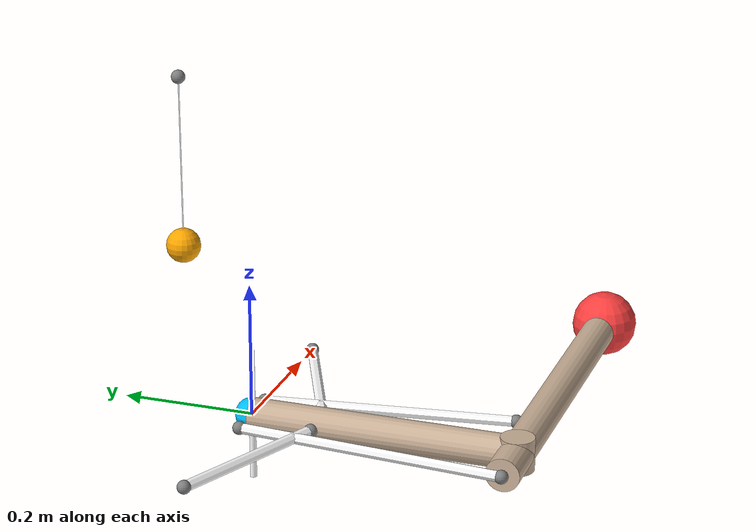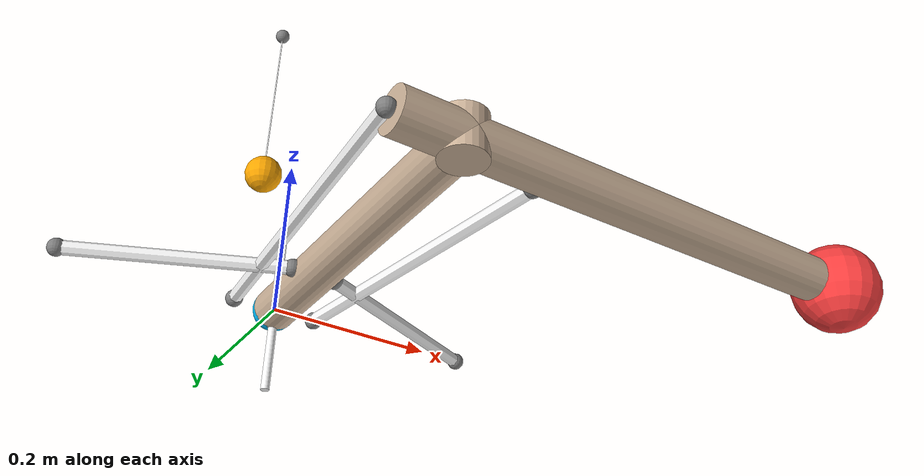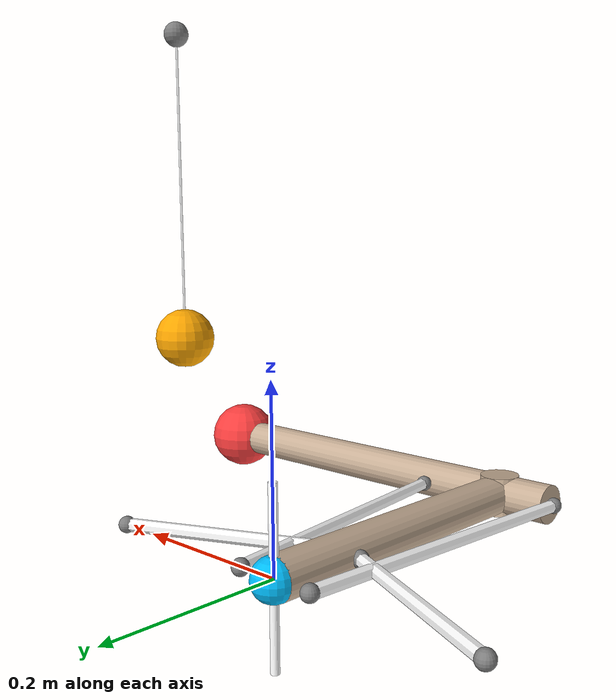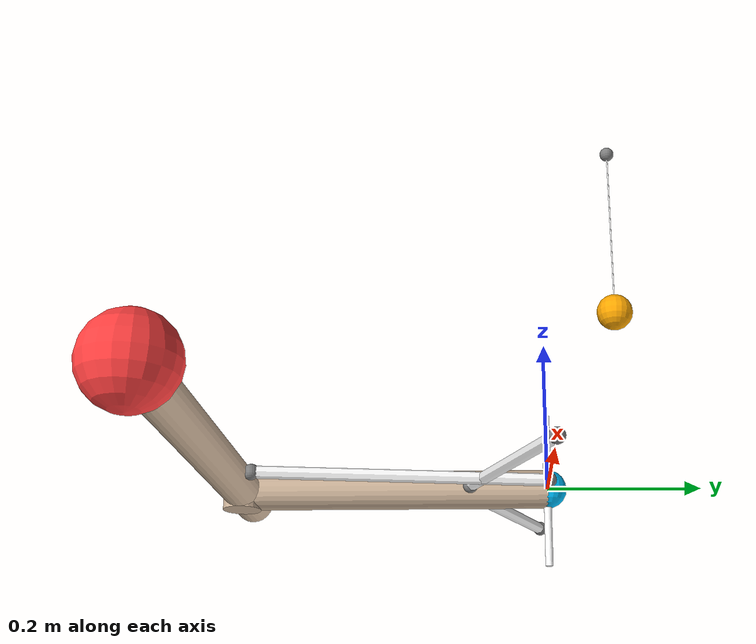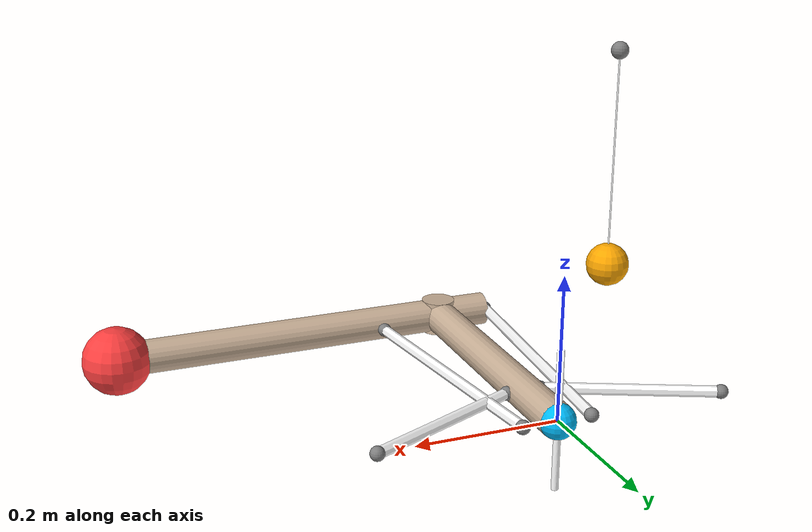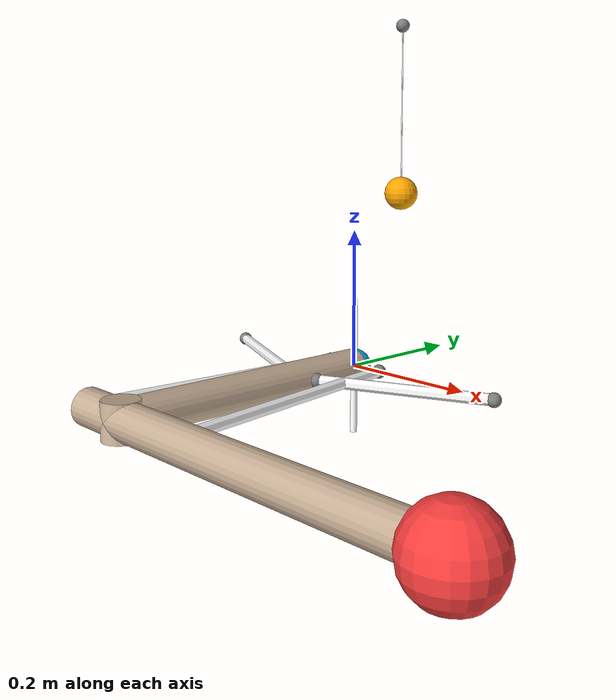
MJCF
<mujoco model="planar-arm">

  <visual>
    <map force="0.1" zfar="30" />
    <rgba haze="0 0 0 1" />
    <global offwidth="1920" offheight="1080" elevation="-90" azimuth="90" />
    <quality shadowsize="2048" />
    <headlight ambient="0.3 0.3 0.3" diffuse="0.8 0.8 0.8" specular="0.4 0.4 0.4" />
  </visual>

  <asset>
    <material name="arm_mat" rgba="0.8 0.7 0.6 1" specular="0.1" shininess="0.1" reflectance="0" />
    <material name="tendon_mat" rgba="1 1 1 1" specular="0" shininess="0" reflectance="0"
      emission="0.2" />
  </asset>

  <default>
    <joint stiffness="0" damping="1" />
    <muscle ctrllimited="true" ctrlrange="0 1" vmax="1.2" fpmax="1.4" timeconst=".01 .04" />
    <geom material="arm_mat" />
    <tendon material="tendon_mat" limited="false" width="0.008" />
  </default>

  <worldbody>
    <!-- TRUNK -->
    <body name="trunk" pos="0 0 0">

      <!-- tendon attachment sites -->
      <site name="deltoid_origin" pos=".25 0 0" size="0.01" />
      <site name="latissimus_origin" pos="-0.25 0 0" size="0.01" />

      <!-- UPPER ARM -->
      <body name="upper_arm" pos="0 0 0">

        <!-- shoulder -->
        <joint name="shoulder" type="hinge" axis="0 0 1" range="-60 60" />

        <!-- tendon attachment sites -->
        <site name="deltoid_insert" pos="0.025 -.1 0" size="0.01" />
        <site name="latissimus_insert" pos="-0.025 -.1 0" size="0.01" />
        <site name="biceps_origin" pos="0.05 0 0" size="0.01" />
        <site name="triceps_origin" pos="-0.05 0 0" size="0.01" />

        <!-- humerus -->
        <geom name="humerus" type="cylinder" size="0.025" fromto="0 0 0 0 -.4 0" mass="1.8" />

        <!-- LOWER ARM -->
        <body name="lower_arm" pos="0 -0.4 0">

          <!-- elbow -->
          <joint name="elbow" type="hinge" axis="0 0 1" range="-60 60" />

          <!-- elbow pulley for muscle wrapping -->
          <geom name="elbow_pulley"
            type="cylinder"
            size="0.025 0.025"
            pos="0 0 0"/>

          <!-- tendon attachment sites -->
          <site name="biceps_insert" pos=".1 .03 0" size="0.01" />
          <site name="triceps_insert" pos="-.08 0 0" size="0.01" />

          <!-- radius -->
          <geom name="radius" type="cylinder" size="0.025" fromto="-.075 0 0 .5 0 0" mass="1.2" />

          <!-- HAND -->
          <body name="hand" pos="0.5 0 0">
            <geom name="hand" type="sphere" size="0.05" pos="0 0 0" rgba="1 .25 .25 1" mass="0.4" />
            <site name="nail2" pos="0 0 0" />
          </body>
        </body>
      </body>
    </body>

    <!-- TARGET -->
    <body name="target" mocap="true" pos="0 0 0">
      <geom name="target" size=".025" type="sphere" contype="0" conaffinity="0"
        rgba="0 .75 1 1" />
    </body>

    <!-- NAIL -->
    <body name="nail" mocap="true" pos="0 0 0">
      <geom name="nail" type="cylinder" size=".005" fromto="0 0 -.1 0 0 .1" contype="0"
        conaffinity="0" rgba="1 1 1 1" />
      <site name="nail1" pos="0 0 0" />
    </body>

    <!-- PENDULUM -->
    <body name="pendulum_base" pos="0 0.1 .5">
      <site name="pendulum_origin" pos="0 0 0" size="0.01" />
    </body>
    <body name="pendulum_bob" pos="0 0.1 0.25">
      <joint type="free" stiffness="0" damping="0" />
      <geom size="0.025" type="sphere" rgba="1 0.66 0 1" />
      <site name="pendulum_insert" pos="0 0 0" size="0.01" />
    </body>
  </worldbody>

  <equality>
    <connect name="nail_eq" active="false" site1="nail1" site2="nail2" />
  </equality>

  <tendon>
    <spatial name="deltoid_tendon" rgba="1 0 1 1">
      <site site="deltoid_origin" />
      <site site="deltoid_insert" />
    </spatial>
    <spatial name="latissimus_tendon" rgba="1 1 0 1">
      <site site="latissimus_origin" />
      <site site="latissimus_insert" />
    </spatial>
    <spatial name="biceps_tendon" rgba="1 0 0 1">
      <site site="biceps_origin" />
      <geom geom="elbow_pulley" />
      <site site="biceps_insert" />
    </spatial>
    <spatial name="triceps_tendon" rgba="0 1 0 1">
      <site site="triceps_origin" />
      <geom geom="radius" />
      <site site="triceps_insert" />
    </spatial>
    <spatial range="0 0.25" limited="true" width="0.001">
      <site site="pendulum_origin" />
      <site site="pendulum_insert" />
    </spatial>
  </tendon>

  <actuator>
    <muscle name="deltoid" tendon="deltoid_tendon" force="100" />
    <muscle name="latissimus" tendon="latissimus_tendon" force="100" />
    <muscle name="biceps" tendon="biceps_tendon" force="100" />
    <muscle name="triceps" tendon="triceps_tendon" force="100" />
  </actuator>

  <sensor>
    <actuatorpos name="deltoid_length" actuator="deltoid" />
    <actuatorpos name="latissimus_length" actuator="latissimus" />
    <actuatorpos name="biceps_length" actuator="biceps" />
    <actuatorpos name="triceps_length" actuator="triceps" />
    <actuatorvel name="deltoid_velocity" actuator="deltoid" />
    <actuatorvel name="latissimus_velocity" actuator="latissimus" />
    <actuatorvel name="biceps_velocity" actuator="biceps" />
    <actuatorvel name="triceps_velocity" actuator="triceps" />
    <actuatorfrc name="deltoid_force" actuator="deltoid" />
    <actuatorfrc name="latissimus_force" actuator="latissimus" />
    <actuatorfrc name="biceps_force" actuator="biceps" />
    <actuatorfrc name="triceps_force" actuator="triceps" />
  </sensor>

</mujoco>
